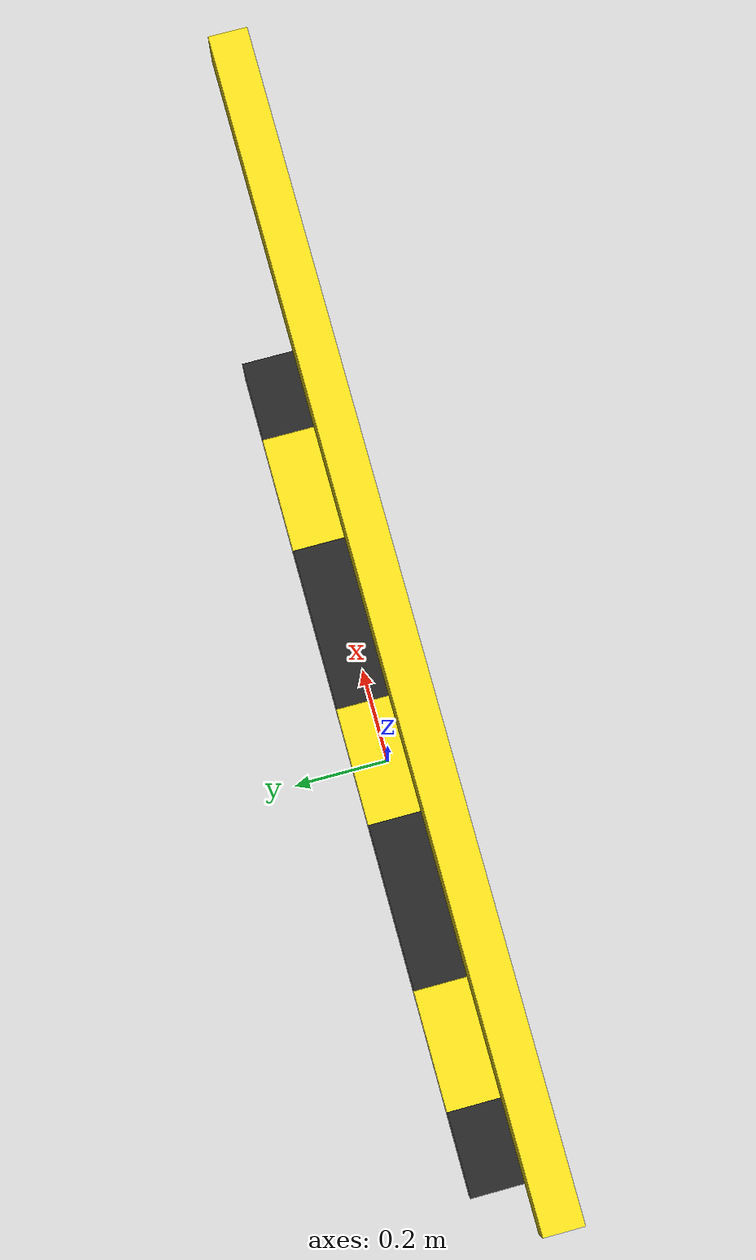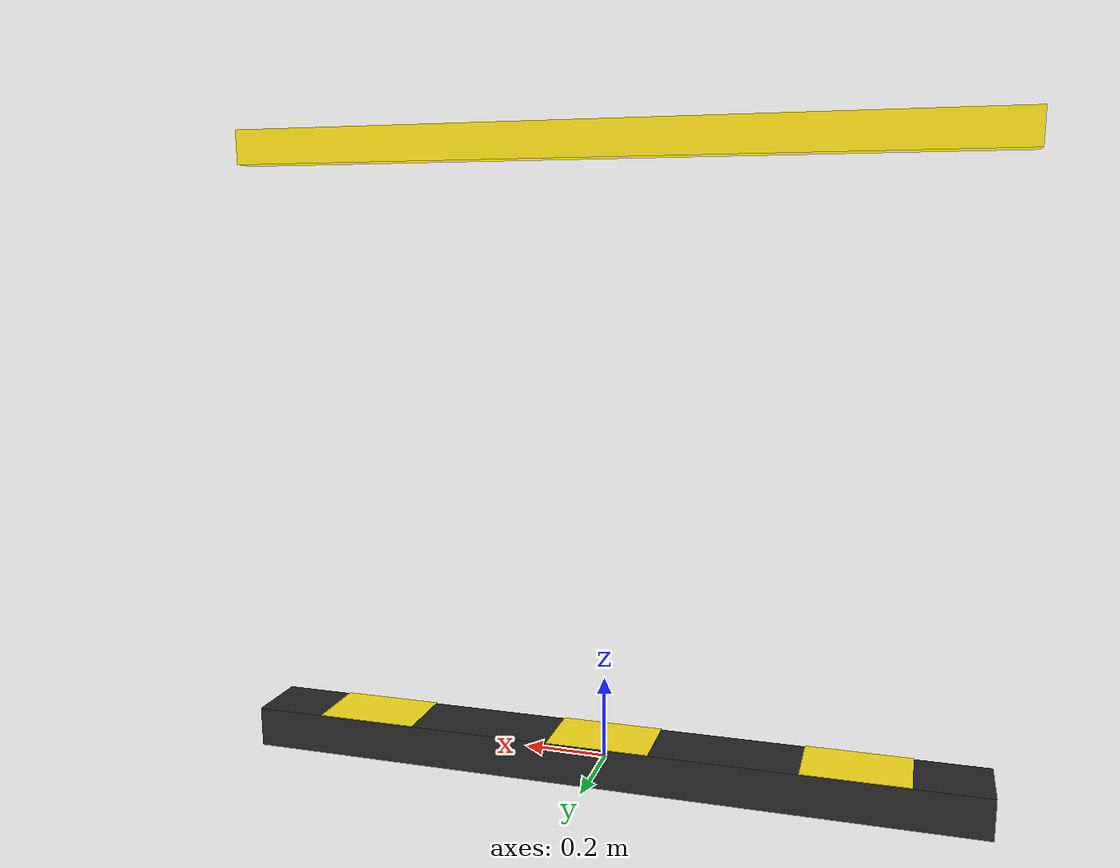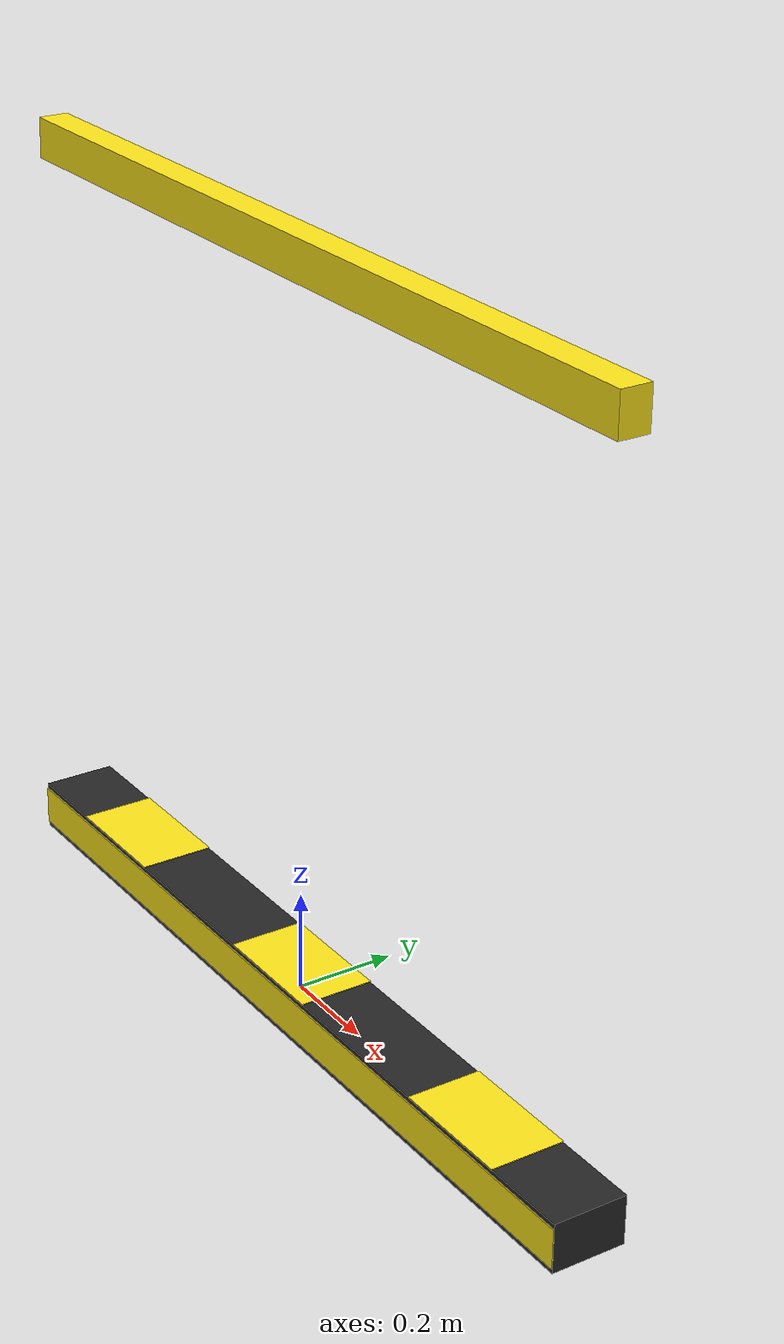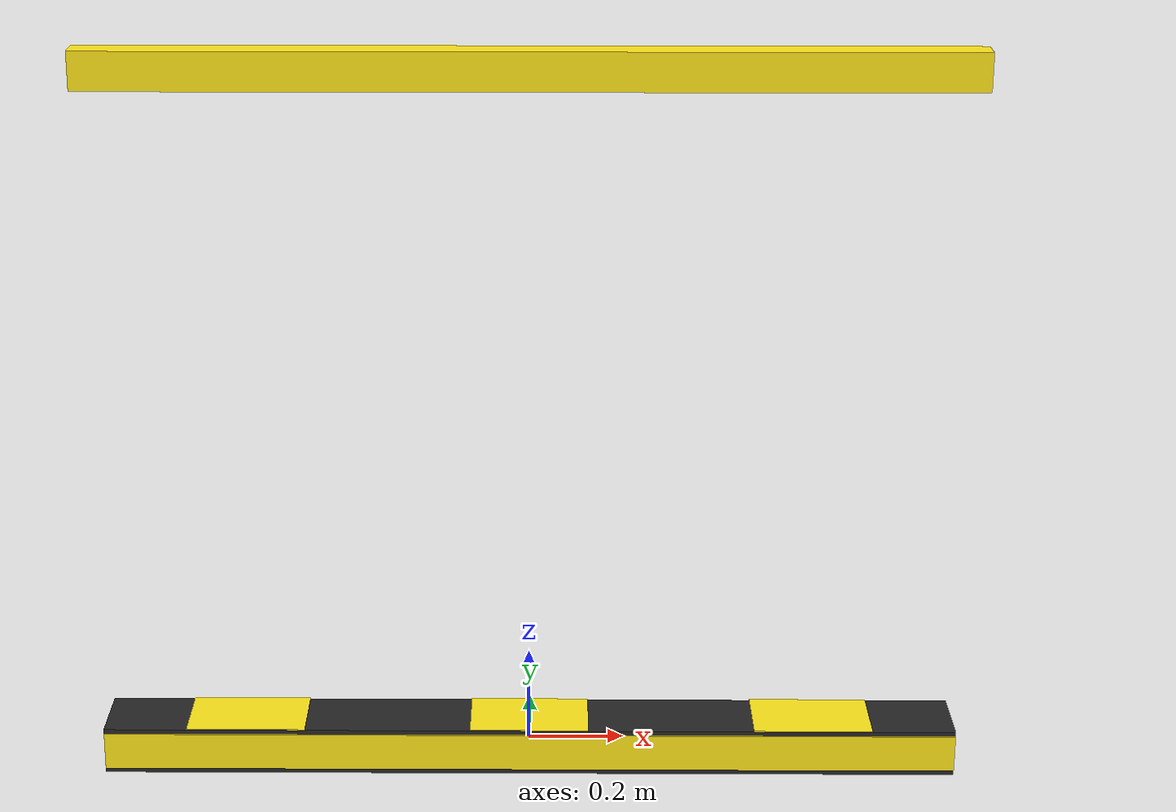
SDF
<?xml version="1.0"?>
<sdf version="1.6">
  <model name="wheel_stopper">
    <static>true</static>
    <link name="link">
      <!-- 메인 몸체 (검은 고무) -->
      <collision name="body_collision">
        <geometry><box><size>1.8 0.15 0.1</size></box></geometry>
      </collision>
      <visual name="body_visual">
        <geometry><box><size>1.8 0.15 0.1</size></box></geometry>
        <material>
          <ambient>0.1 0.1 0.1 1</ambient>
          <diffuse>0.15 0.15 0.15 1</diffuse>
        </material>
      </visual>

      <!-- 노란 반사 스트라이프 1 (왼쪽) -->
      <visual name="stripe_left">
        <pose>-0.6 0 0.051 0 0 0</pose>
        <geometry><box><size>0.25 0.152 0.002</size></box></geometry>
        <material>
          <ambient>1.0 0.85 0.0 1</ambient>
          <diffuse>1.0 0.9 0.1 1</diffuse>
          <emissive>0.3 0.25 0 1</emissive>
        </material>
      </visual>

      <!-- 노란 반사 스트라이프 2 (가운데) -->
      <visual name="stripe_center">
        <pose>0 0 0.051 0 0 0</pose>
        <geometry><box><size>0.25 0.152 0.002</size></box></geometry>
        <material>
          <ambient>1.0 0.85 0.0 1</ambient>
          <diffuse>1.0 0.9 0.1 1</diffuse>
          <emissive>0.3 0.25 0 1</emissive>
        </material>
      </visual>

      <!-- 노란 반사 스트라이프 3 (오른쪽) -->
      <visual name="stripe_right">
        <pose>0.6 0 0.051 0 0 0</pose>
        <geometry><box><size>0.25 0.152 0.002</size></box></geometry>
        <material>
          <ambient>1.0 0.85 0.0 1</ambient>
          <diffuse>1.0 0.9 0.1 1</diffuse>
          <emissive>0.3 0.25 0 1</emissive>
        </material>
      </visual>

      <!-- 측면 노란 스트라이프 (앞면) -->
      <visual name="stripe_front">
        <pose>0 -0.076 0 0 0 0</pose>
        <geometry><box><size>1.8 0.002 0.08</size></box></geometry>
        <material>
          <ambient>1.0 0.85 0.0 1</ambient>
          <diffuse>1.0 0.9 0.1 1</diffuse>
        </material>
      </visual>

      <!-- LiDAR 반사체: 수평 LiDAR(z=1.5m)에 방지턱이 감지되도록 같은 높이에 배치 -->
      <collision name="lidar_reflector_col">
        <pose>0 0 1.45 0 0 0</pose>
        <geometry><box><size>1.8 0.06 0.08</size></box></geometry>
      </collision>
      <visual name="lidar_reflector_vis">
        <pose>0 0 1.45 0 0 0</pose>
        <geometry><box><size>1.8 0.06 0.08</size></box></geometry>
        <material>
          <ambient>1.0 0.85 0.0 1</ambient>
          <diffuse>1.0 0.9 0.1 1</diffuse>
          <emissive>0.4 0.3 0.0 1</emissive>
        </material>
      </visual>
    </link>
  </model>
</sdf>
